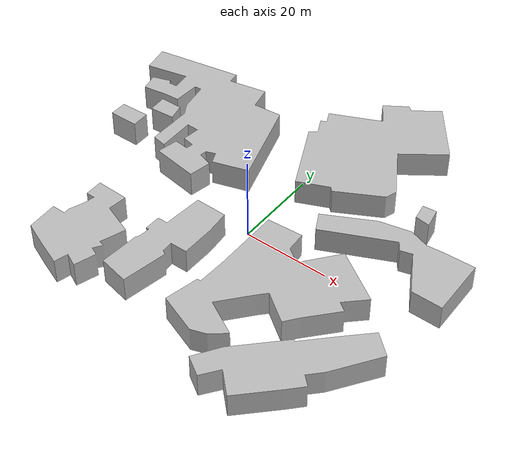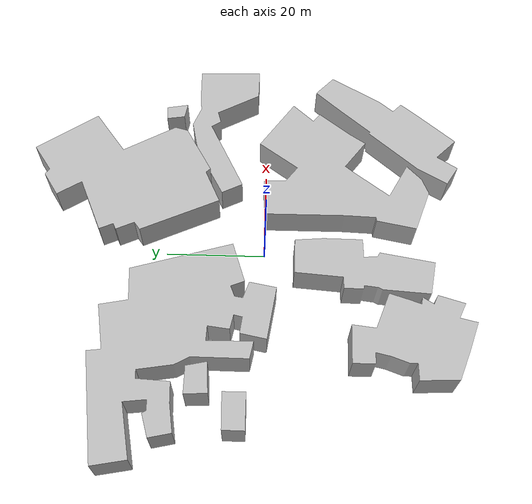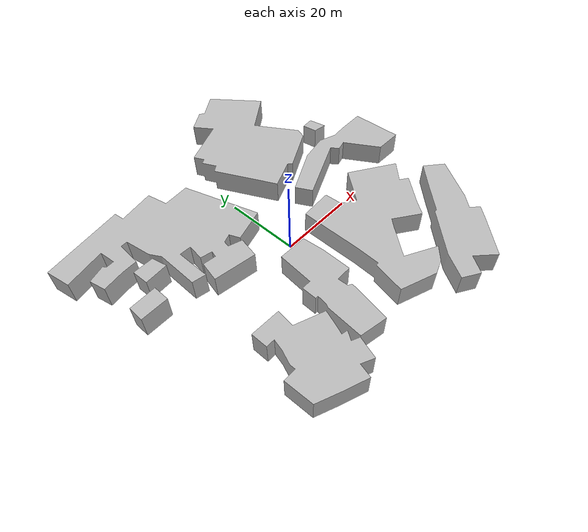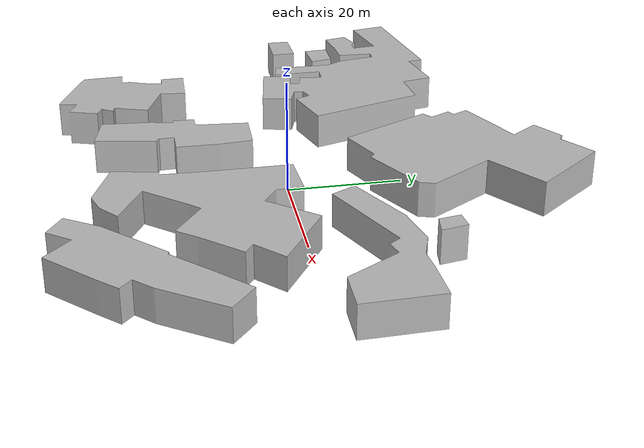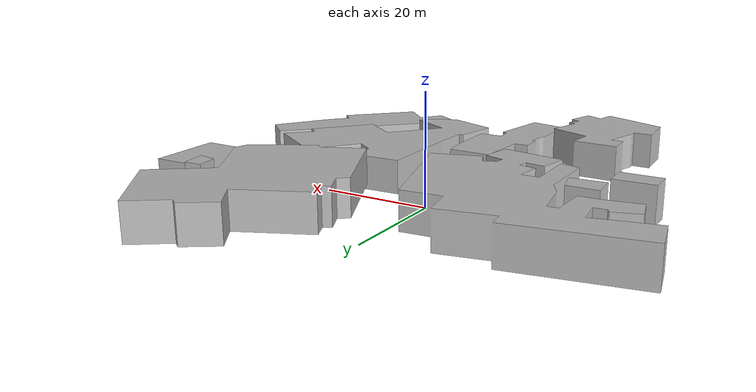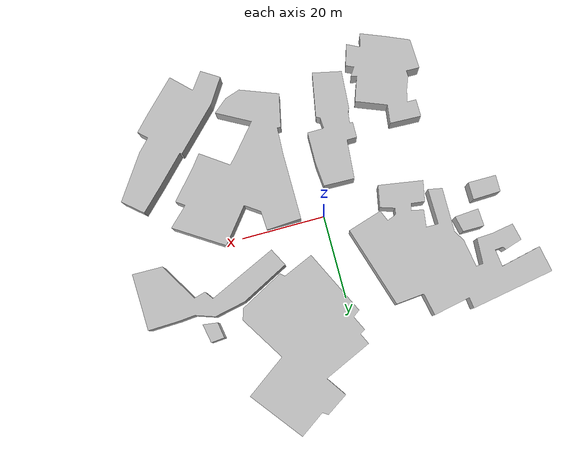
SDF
<?xml version="1.0" ?>
<sdf version="1.7">
  <world name="cluster_10_close">
    <gravity>0 0 -9.8</gravity>
    <magnetic_field>6e-06 2.3e-05 -4.2e-05</magnetic_field>
    <atmosphere type="adiabatic"/>
    <scene>
      <ambient>0.65 0.65 0.65 1</ambient>
      <background>0.7 0.82 1 1</background>
      <shadows>false</shadows>
    </scene>
    <gui fullscreen="0">
      <camera name="user_camera">
        <pose>0 -120 75 0 0.55 1.5708</pose>
        <view_controller>orbit</view_controller>
        <projection_type>perspective</projection_type>
      </camera>
    </gui>
    <light name="sun" type="directional">
      <cast_shadows>false</cast_shadows>
      <pose>0 0 1000 0 0 0</pose>
      <diffuse>0.8 0.8 0.8 1</diffuse>
      <specular>0.2 0.2 0.2 1</specular>
      <direction>-0.5 0.2 -1</direction>
    </light>
    <include>
      <name>building_3099_assumed_a_casa</name>
      <uri>model://building_3099_assumed_a_casa</uri>
      <pose>-6.886200 -18.948700 3.288000 0 0 0</pose>
    </include>
    <include>
      <name>building_7062_assumed_a_casa</name>
      <uri>model://building_7062_assumed_a_casa</uri>
      <pose>18.842800 -15.905200 1.648000 0 0 0</pose>
    </include>
    <include>
      <name>building_6936_assumed_a_casa</name>
      <uri>model://building_6936_assumed_a_casa</uri>
      <pose>29.150800 9.339300 0.000000 0 0 0</pose>
    </include>
    <include>
      <name>building_7096_assumed_a_casa</name>
      <uri>model://building_7096_assumed_a_casa</uri>
      <pose>-21.933700 -26.682200 4.941000 0 0 0</pose>
    </include>
    <include>
      <name>building_3590_assumed_a_casa</name>
      <uri>model://building_3590_assumed_a_casa</uri>
      <pose>29.966300 -25.943200 0.382000 0 0 0</pose>
    </include>
    <include>
      <name>building_6337_assumed_a_casa</name>
      <uri>model://building_6337_assumed_a_casa</uri>
      <pose>-25.224200 14.061800 5.640000 0 0 0</pose>
    </include>
    <include>
      <name>building_5936_assumed_a_casa</name>
      <uri>model://building_5936_assumed_a_casa</uri>
      <pose>12.565300 28.461300 5.792000 0 0 0</pose>
    </include>
    <include>
      <name>building_3118_assumed_a_casa</name>
      <uri>model://building_3118_assumed_a_casa</uri>
      <pose>-31.192700 11.026800 6.105604 0 0 0</pose>
    </include>
    <include>
      <name>building_5057_assumed_a_casa</name>
      <uri>model://building_5057_assumed_a_casa</uri>
      <pose>31.378300 19.962300 2.832000 0 0 0</pose>
    </include>
    <include>
      <name>building_2108_assumed_a_casa</name>
      <uri>model://building_2108_assumed_a_casa</uri>
      <pose>-36.666700 4.627800 5.988365 0 0 0</pose>
    </include>
  </world>
</sdf>

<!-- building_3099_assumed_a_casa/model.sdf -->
<sdf version="1.7">
  <model name="building_3099_assumed_a_casa">
    <static>true</static>
    <link name="building_link">
      <visual name="building_visual">
        <geometry>
          <mesh>
            <uri>model://building_3099_assumed_a_casa/meshes/construction_3099_assumed_A_Casa_h6m.obj</uri>
          </mesh>
        </geometry>
      </visual>
    <collision name="building_collision">
      <geometry>
        <mesh>
          <uri>model://building_3099_assumed_a_casa/meshes/construction_3099_assumed_A_Casa_h6m.obj</uri>
        </mesh>
      </geometry>
    </collision>
    </link>
  </model>
</sdf>

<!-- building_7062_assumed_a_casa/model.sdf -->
<sdf version="1.7">
  <model name="building_7062_assumed_a_casa">
    <static>true</static>
    <link name="building_link">
      <visual name="building_visual">
        <geometry>
          <mesh>
            <uri>model://building_7062_assumed_a_casa/meshes/construction_7062_assumed_A_Casa_h6m.obj</uri>
          </mesh>
        </geometry>
      </visual>
    <collision name="building_collision">
      <geometry>
        <mesh>
          <uri>model://building_7062_assumed_a_casa/meshes/construction_7062_assumed_A_Casa_h6m.obj</uri>
        </mesh>
      </geometry>
    </collision>
    </link>
  </model>
</sdf>

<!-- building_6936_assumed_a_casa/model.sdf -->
<sdf version="1.7">
  <model name="building_6936_assumed_a_casa">
    <static>true</static>
    <link name="building_link">
      <visual name="building_visual">
        <geometry>
          <mesh>
            <uri>model://building_6936_assumed_a_casa/meshes/construction_6936_assumed_A_Casa_h6m.obj</uri>
          </mesh>
        </geometry>
      </visual>
    <collision name="building_collision">
      <geometry>
        <mesh>
          <uri>model://building_6936_assumed_a_casa/meshes/construction_6936_assumed_A_Casa_h6m.obj</uri>
        </mesh>
      </geometry>
    </collision>
    </link>
  </model>
</sdf>

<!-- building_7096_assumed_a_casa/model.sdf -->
<sdf version="1.7">
  <model name="building_7096_assumed_a_casa">
    <static>true</static>
    <link name="building_link">
      <visual name="building_visual">
        <geometry>
          <mesh>
            <uri>model://building_7096_assumed_a_casa/meshes/construction_7096_assumed_A_Casa_h6m.obj</uri>
          </mesh>
        </geometry>
      </visual>
    <collision name="building_collision">
      <geometry>
        <mesh>
          <uri>model://building_7096_assumed_a_casa/meshes/construction_7096_assumed_A_Casa_h6m.obj</uri>
        </mesh>
      </geometry>
    </collision>
    </link>
  </model>
</sdf>

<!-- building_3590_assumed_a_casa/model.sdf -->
<sdf version="1.7">
  <model name="building_3590_assumed_a_casa">
    <static>true</static>
    <link name="building_link">
      <visual name="building_visual">
        <geometry>
          <mesh>
            <uri>model://building_3590_assumed_a_casa/meshes/construction_3590_assumed_A_Casa_h6m.obj</uri>
          </mesh>
        </geometry>
      </visual>
    <collision name="building_collision">
      <geometry>
        <mesh>
          <uri>model://building_3590_assumed_a_casa/meshes/construction_3590_assumed_A_Casa_h6m.obj</uri>
        </mesh>
      </geometry>
    </collision>
    </link>
  </model>
</sdf>

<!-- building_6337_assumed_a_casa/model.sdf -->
<sdf version="1.7">
  <model name="building_6337_assumed_a_casa">
    <static>true</static>
    <link name="building_link">
      <visual name="building_visual">
        <geometry>
          <mesh>
            <uri>model://building_6337_assumed_a_casa/meshes/construction_6337_assumed_A_Casa_h6m.obj</uri>
          </mesh>
        </geometry>
      </visual>
    <collision name="building_collision">
      <geometry>
        <mesh>
          <uri>model://building_6337_assumed_a_casa/meshes/construction_6337_assumed_A_Casa_h6m.obj</uri>
        </mesh>
      </geometry>
    </collision>
    </link>
  </model>
</sdf>

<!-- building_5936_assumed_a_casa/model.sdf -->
<sdf version="1.7">
  <model name="building_5936_assumed_a_casa">
    <static>true</static>
    <link name="building_link">
      <visual name="building_visual">
        <geometry>
          <mesh>
            <uri>model://building_5936_assumed_a_casa/meshes/construction_5936_assumed_A_Casa_h6m.obj</uri>
          </mesh>
        </geometry>
      </visual>
    <collision name="building_collision">
      <geometry>
        <mesh>
          <uri>model://building_5936_assumed_a_casa/meshes/construction_5936_assumed_A_Casa_h6m.obj</uri>
        </mesh>
      </geometry>
    </collision>
    </link>
  </model>
</sdf>

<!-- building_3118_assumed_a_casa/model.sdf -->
<sdf version="1.7">
  <model name="building_3118_assumed_a_casa">
    <static>true</static>
    <link name="building_link">
      <visual name="building_visual">
        <geometry>
          <mesh>
            <uri>model://building_3118_assumed_a_casa/meshes/construction_3118_assumed_A_Casa_h6m.obj</uri>
          </mesh>
        </geometry>
      </visual>
    <collision name="building_collision">
      <geometry>
        <mesh>
          <uri>model://building_3118_assumed_a_casa/meshes/construction_3118_assumed_A_Casa_h6m.obj</uri>
        </mesh>
      </geometry>
    </collision>
    </link>
  </model>
</sdf>

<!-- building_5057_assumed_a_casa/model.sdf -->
<sdf version="1.7">
  <model name="building_5057_assumed_a_casa">
    <static>true</static>
    <link name="building_link">
      <visual name="building_visual">
        <geometry>
          <mesh>
            <uri>model://building_5057_assumed_a_casa/meshes/construction_5057_assumed_A_Casa_h6m.obj</uri>
          </mesh>
        </geometry>
      </visual>
    <collision name="building_collision">
      <geometry>
        <mesh>
          <uri>model://building_5057_assumed_a_casa/meshes/construction_5057_assumed_A_Casa_h6m.obj</uri>
        </mesh>
      </geometry>
    </collision>
    </link>
  </model>
</sdf>

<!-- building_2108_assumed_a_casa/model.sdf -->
<sdf version="1.7">
  <model name="building_2108_assumed_a_casa">
    <static>true</static>
    <link name="building_link">
      <visual name="building_visual">
        <geometry>
          <mesh>
            <uri>model://building_2108_assumed_a_casa/meshes/construction_2108_assumed_A_Casa_h6m.obj</uri>
          </mesh>
        </geometry>
      </visual>
    <collision name="building_collision">
      <geometry>
        <mesh>
          <uri>model://building_2108_assumed_a_casa/meshes/construction_2108_assumed_A_Casa_h6m.obj</uri>
        </mesh>
      </geometry>
    </collision>
    </link>
  </model>
</sdf>
